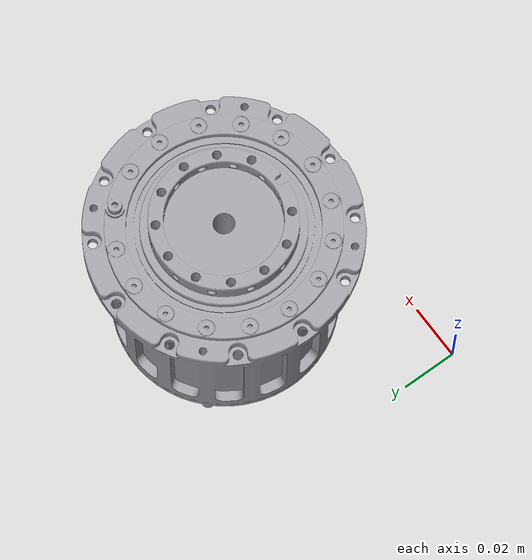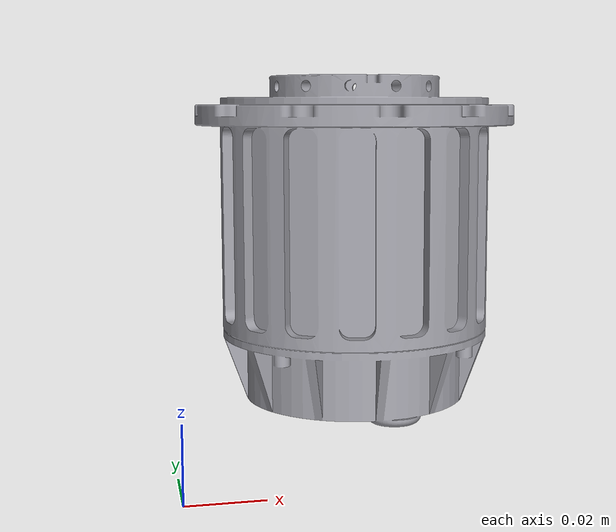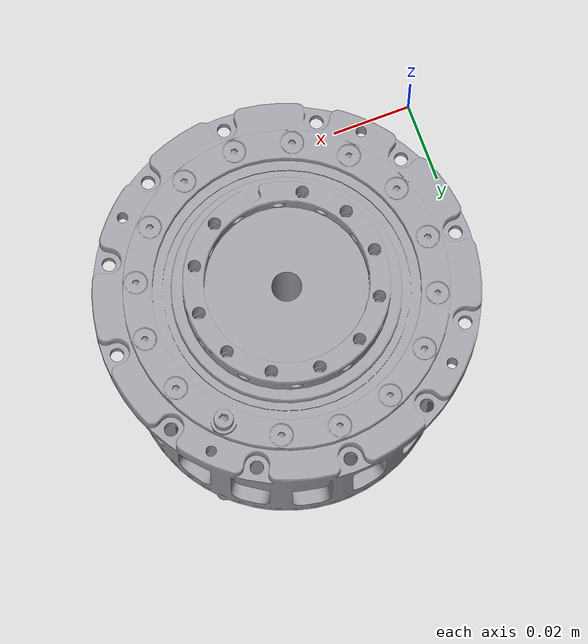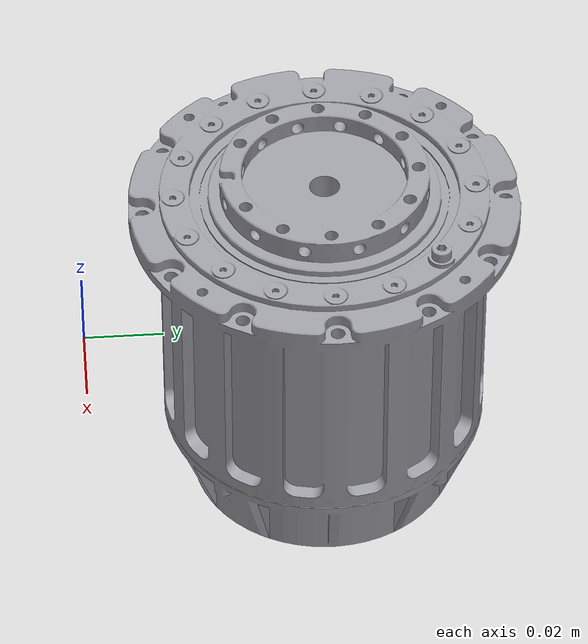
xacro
<?xml version="1.0" encoding="utf-8"?>
<!-- 最小测试模型：只保留 base_link（LINK1）
     用法: xacro link1_only.urdf.xacro
     目的: 先在 RViz2 里确认 mesh 能显示出来 -->
<robot name="link1_only" xmlns:xacro="http://www.ros.org/wiki/xacro">
  <xacro:arg name="meshes_dir" default="package://temp_description/meshes"/>

  <material name="silver"><color rgba="0.62 0.62 0.65 1.0"/></material>

  <link name="world"/>
  <joint name="fixed_base" type="fixed">
    <origin xyz="0 0 0" rpy="0 0 0"/>
    <parent link="world"/>
    <child link="base_link"/>
  </joint>

  <link name="base_link">
    <visual>
      <origin xyz="0 0 0" rpy="0 0 0"/>
      <geometry>
        <mesh scale="0.001 0.001 0.001" filename="$(arg meshes_dir)/base_link.STL"/>
      </geometry>
      <material name="silver"/>
    </visual>
    <collision>
      <origin xyz="0 0 0" rpy="0 0 0"/>
      <geometry>
        <mesh scale="0.001 0.001 0.001" filename="$(arg meshes_dir)/base_link.STL"/>
      </geometry>
    </collision>
  </link>
</robot>
